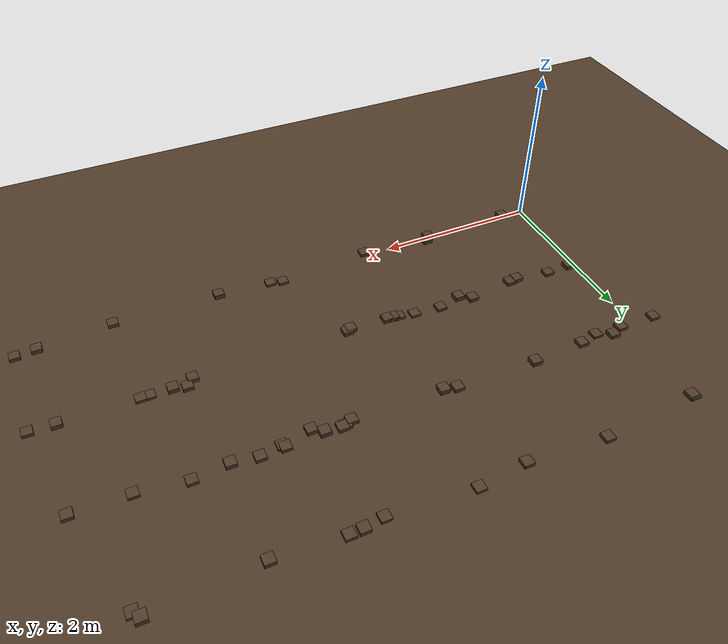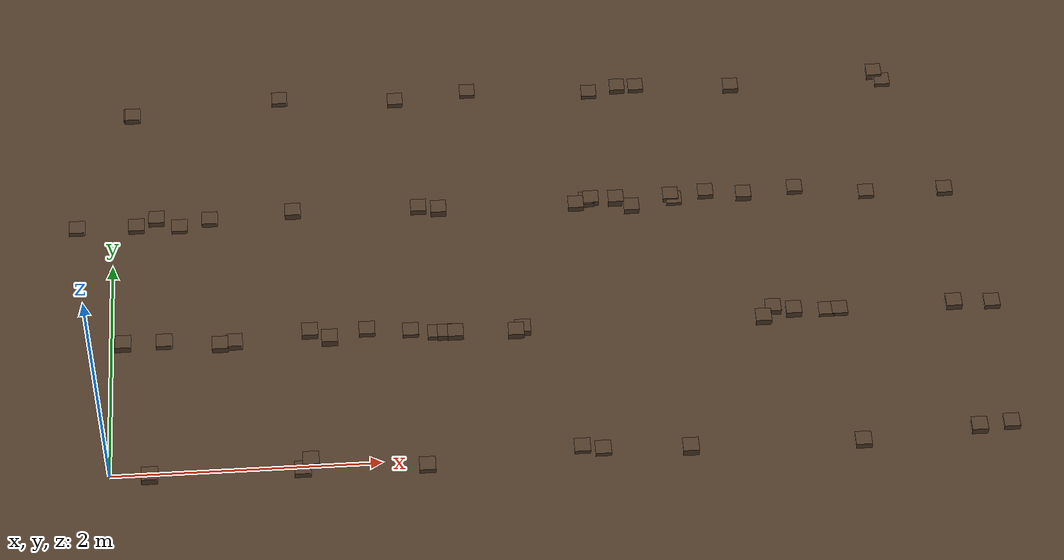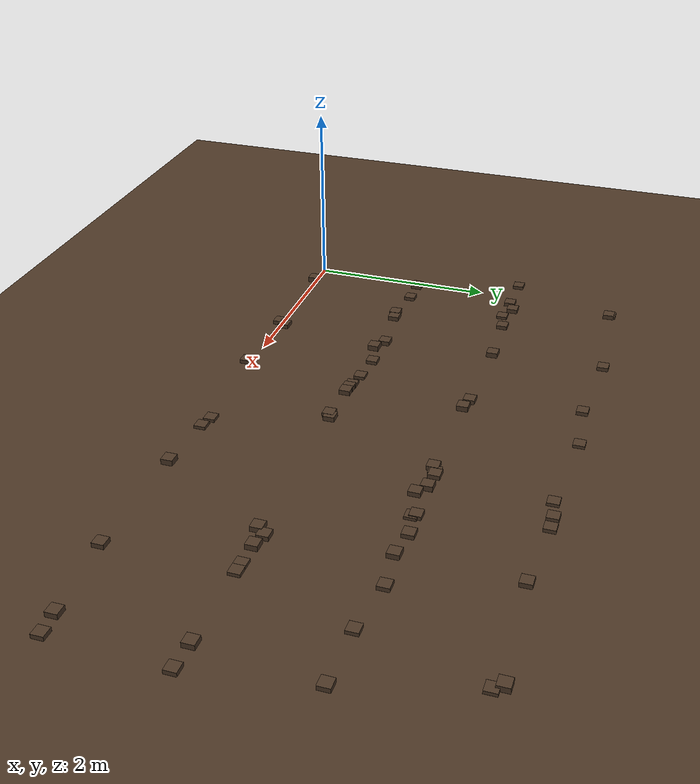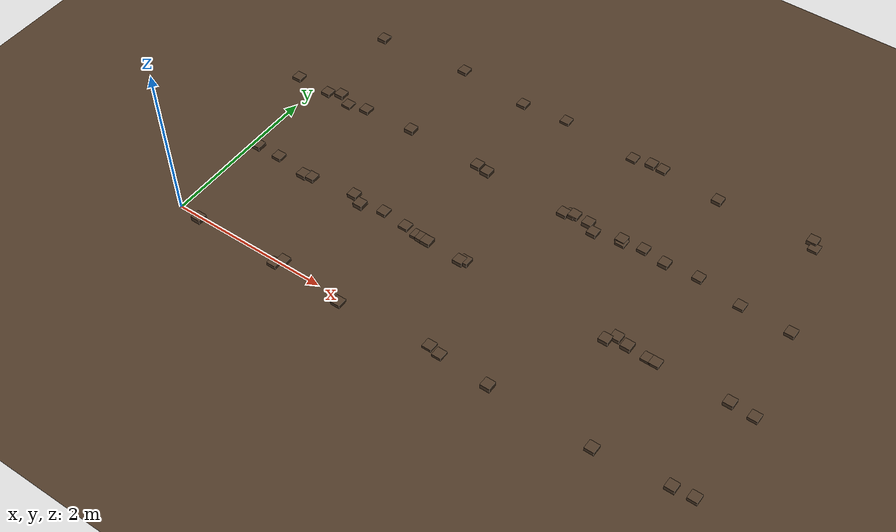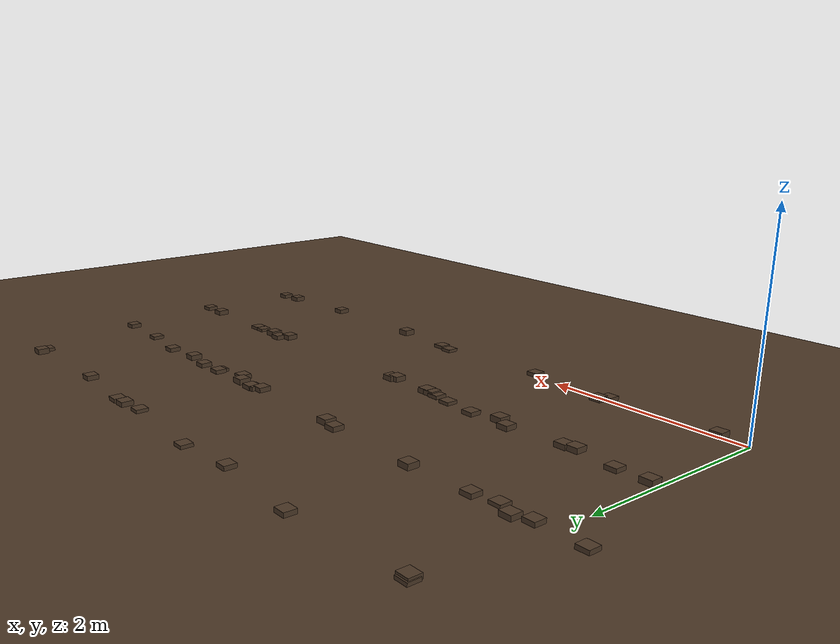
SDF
<sdf version="1.9">
 <world name="field_main">
  <model name="furrow_floor">
   <static>true</static>
   <link name="link">
    <pose>0 0 0 0.05236 0 0</pose>
    <collision name="c">
     <geometry><plane><normal>0 0 1</normal><size>200 200</size></plane></geometry>
     <surface><friction><ode><mu>0.4</mu><mu2>0.4</mu2></ode></friction></surface>
    </collision>
    <visual name="v">
     <geometry><plane><normal>0 0 1</normal><size>200 200</size></plane></geometry>
     <material><ambient>0.20 0.15 0.10 1</ambient><diffuse>0.30 0.22 0.15 1</diffuse></material>
    </visual>
   </link>
  </model>
  <model name="clod_0_0">
   <static>true</static>
   <link name="l">
    <collision name="c">
     <geometry><box><size>0.12 0.12 0.059</size></box></geometry>
     <surface><friction><ode><mu>0.4</mu><mu2>0.4</mu2></ode></friction></surface>
    </collision>
    <visual name="v">
     <geometry><box><size>0.12 0.12 0.059</size></box></geometry>
     <material><ambient>0.22 0.16 0.11 1</ambient><diffuse>0.30 0.22 0.15 1</diffuse></material>
    </visual>
    <pose>0.290 -0.027 0.029 0 0 0</pose>
   </link>
  </model>
  <model name="clod_0_1">
   <static>true</static>
   <link name="l">
    <collision name="c">
     <geometry><box><size>0.12 0.12 0.045</size></box></geometry>
     <surface><friction><ode><mu>0.4</mu><mu2>0.4</mu2></ode></friction></surface>
    </collision>
    <visual name="v">
     <geometry><box><size>0.12 0.12 0.045</size></box></geometry>
     <material><ambient>0.22 0.16 0.11 1</ambient><diffuse>0.30 0.22 0.15 1</diffuse></material>
    </visual>
    <pose>6.665 0.052 0.022 0 0 0</pose>
   </link>
  </model>
  <model name="clod_0_2">
   <static>true</static>
   <link name="l">
    <collision name="c">
     <geometry><box><size>0.12 0.12 0.047</size></box></geometry>
     <surface><friction><ode><mu>0.4</mu><mu2>0.4</mu2></ode></friction></surface>
    </collision>
    <visual name="v">
     <geometry><box><size>0.12 0.12 0.047</size></box></geometry>
     <material><ambient>0.22 0.16 0.11 1</ambient><diffuse>0.30 0.22 0.15 1</diffuse></material>
    </visual>
    <pose>1.472 0.044 0.024 0 0 0</pose>
   </link>
  </model>
  <model name="clod_0_3">
   <static>true</static>
   <link name="l">
    <collision name="c">
     <geometry><box><size>0.12 0.12 0.034</size></box></geometry>
     <surface><friction><ode><mu>0.4</mu><mu2>0.4</mu2></ode></friction></surface>
    </collision>
    <visual name="v">
     <geometry><box><size>0.12 0.12 0.034</size></box></geometry>
     <material><ambient>0.22 0.16 0.11 1</ambient><diffuse>0.30 0.22 0.15 1</diffuse></material>
    </visual>
    <pose>3.624 0.011 0.017 0 0 0</pose>
   </link>
  </model>
  <model name="clod_0_4">
   <static>true</static>
   <link name="l">
    <collision name="c">
     <geometry><box><size>0.12 0.12 0.048</size></box></geometry>
     <surface><friction><ode><mu>0.4</mu><mu2>0.4</mu2></ode></friction></surface>
    </collision>
    <visual name="v">
     <geometry><box><size>0.12 0.12 0.048</size></box></geometry>
     <material><ambient>0.22 0.16 0.11 1</ambient><diffuse>0.30 0.22 0.15 1</diffuse></material>
    </visual>
    <pose>5.547 -0.045 0.024 0 0 0</pose>
   </link>
  </model>
  <model name="clod_0_5">
   <static>true</static>
   <link name="l">
    <collision name="c">
     <geometry><box><size>0.12 0.12 0.054</size></box></geometry>
     <surface><friction><ode><mu>0.4</mu><mu2>0.4</mu2></ode></friction></surface>
    </collision>
    <visual name="v">
     <geometry><box><size>0.12 0.12 0.054</size></box></geometry>
     <material><ambient>0.22 0.16 0.11 1</ambient><diffuse>0.30 0.22 0.15 1</diffuse></material>
    </visual>
    <pose>6.421 0.030 0.027 0 0 0</pose>
   </link>
  </model>
  <model name="clod_0_6">
   <static>true</static>
   <link name="l">
    <collision name="c">
     <geometry><box><size>0.12 0.12 0.060</size></box></geometry>
     <surface><friction><ode><mu>0.4</mu><mu2>0.4</mu2></ode></friction></surface>
    </collision>
    <visual name="v">
     <geometry><box><size>0.12 0.12 0.060</size></box></geometry>
     <material><ambient>0.22 0.16 0.11 1</ambient><diffuse>0.30 0.22 0.15 1</diffuse></material>
    </visual>
    <pose>4.269 -0.026 0.030 0 0 0</pose>
   </link>
  </model>
  <model name="clod_0_7">
   <static>true</static>
   <link name="l">
    <collision name="c">
     <geometry><box><size>0.12 0.12 0.045</size></box></geometry>
     <surface><friction><ode><mu>0.4</mu><mu2>0.4</mu2></ode></friction></surface>
    </collision>
    <visual name="v">
     <geometry><box><size>0.12 0.12 0.045</size></box></geometry>
     <material><ambient>0.22 0.16 0.11 1</ambient><diffuse>0.30 0.22 0.15 1</diffuse></material>
    </visual>
    <pose>1.412 -0.037 0.022 0 0 0</pose>
   </link>
  </model>
  <model name="clod_0_8">
   <static>true</static>
   <link name="l">
    <collision name="c">
     <geometry><box><size>0.12 0.12 0.041</size></box></geometry>
     <surface><friction><ode><mu>0.4</mu><mu2>0.4</mu2></ode></friction></surface>
    </collision>
    <visual name="v">
     <geometry><box><size>0.12 0.12 0.041</size></box></geometry>
     <material><ambient>0.22 0.16 0.11 1</ambient><diffuse>0.30 0.22 0.15 1</diffuse></material>
    </visual>
    <pose>2.326 -0.057 0.020 0 0 0</pose>
   </link>
  </model>
  <model name="clod_0_9">
   <static>true</static>
   <link name="l">
    <collision name="c">
     <geometry><box><size>0.12 0.12 0.032</size></box></geometry>
     <surface><friction><ode><mu>0.4</mu><mu2>0.4</mu2></ode></friction></surface>
    </collision>
    <visual name="v">
     <geometry><box><size>0.12 0.12 0.032</size></box></geometry>
     <material><ambient>0.22 0.16 0.11 1</ambient><diffuse>0.30 0.22 0.15 1</diffuse></material>
    </visual>
    <pose>3.473 0.043 0.016 0 0 0</pose>
   </link>
  </model>
  <model name="clod_0_10">
   <static>true</static>
   <link name="l">
    <collision name="c">
     <geometry><box><size>0.12 0.12 0.051</size></box></geometry>
     <surface><friction><ode><mu>0.4</mu><mu2>0.4</mu2></ode></friction></surface>
    </collision>
    <visual name="v">
     <geometry><box><size>0.12 0.12 0.051</size></box></geometry>
     <material><ambient>0.22 0.16 0.11 1</ambient><diffuse>0.30 0.22 0.15 1</diffuse></material>
    </visual>
    <pose>2.595 1.173 0.026 0 0 0</pose>
   </link>
  </model>
  <model name="clod_0_11">
   <static>true</static>
   <link name="l">
    <collision name="c">
     <geometry><box><size>0.12 0.12 0.052</size></box></geometry>
     <surface><friction><ode><mu>0.4</mu><mu2>0.4</mu2></ode></friction></surface>
    </collision>
    <visual name="v">
     <geometry><box><size>0.12 0.12 0.052</size></box></geometry>
     <material><ambient>0.22 0.16 0.11 1</ambient><diffuse>0.30 0.22 0.15 1</diffuse></material>
    </visual>
    <pose>0.817 1.170 0.026 0 0 0</pose>
   </link>
  </model>
  <model name="clod_0_12">
   <static>true</static>
   <link name="l">
    <collision name="c">
     <geometry><box><size>0.12 0.12 0.040</size></box></geometry>
     <surface><friction><ode><mu>0.4</mu><mu2>0.4</mu2></ode></friction></surface>
    </collision>
    <visual name="v">
     <geometry><box><size>0.12 0.12 0.040</size></box></geometry>
     <material><ambient>0.22 0.16 0.11 1</ambient><diffuse>0.30 0.22 0.15 1</diffuse></material>
    </visual>
    <pose>1.927 1.249 0.020 0 0 0</pose>
   </link>
  </model>
  <model name="clod_0_13">
   <static>true</static>
   <link name="l">
    <collision name="c">
     <geometry><box><size>0.12 0.12 0.059</size></box></geometry>
     <surface><friction><ode><mu>0.4</mu><mu2>0.4</mu2></ode></friction></surface>
    </collision>
    <visual name="v">
     <geometry><box><size>0.12 0.12 0.059</size></box></geometry>
     <material><ambient>0.22 0.16 0.11 1</ambient><diffuse>0.30 0.22 0.15 1</diffuse></material>
    </visual>
    <pose>1.643 1.177 0.030 0 0 0</pose>
   </link>
  </model>
  <model name="clod_0_14">
   <static>true</static>
   <link name="l">
    <collision name="c">
     <geometry><box><size>0.12 0.12 0.054</size></box></geometry>
     <surface><friction><ode><mu>0.4</mu><mu2>0.4</mu2></ode></friction></surface>
    </collision>
    <visual name="v">
     <geometry><box><size>0.12 0.12 0.054</size></box></geometry>
     <material><ambient>0.22 0.16 0.11 1</ambient><diffuse>0.30 0.22 0.15 1</diffuse></material>
    </visual>
    <pose>4.937 1.166 0.027 0 0 0</pose>
   </link>
  </model>
  <model name="clod_0_15">
   <static>true</static>
   <link name="l">
    <collision name="c">
     <geometry><box><size>0.12 0.12 0.053</size></box></geometry>
     <surface><friction><ode><mu>0.4</mu><mu2>0.4</mu2></ode></friction></surface>
    </collision>
    <visual name="v">
     <geometry><box><size>0.12 0.12 0.053</size></box></geometry>
     <material><ambient>0.22 0.16 0.11 1</ambient><diffuse>0.30 0.22 0.15 1</diffuse></material>
    </visual>
    <pose>3.054 1.155 0.027 0 0 0</pose>
   </link>
  </model>
  <model name="clod_0_16">
   <static>true</static>
   <link name="l">
    <collision name="c">
     <geometry><box><size>0.12 0.12 0.035</size></box></geometry>
     <surface><friction><ode><mu>0.4</mu><mu2>0.4</mu2></ode></friction></surface>
    </collision>
    <visual name="v">
     <geometry><box><size>0.12 0.12 0.035</size></box></geometry>
     <material><ambient>0.22 0.16 0.11 1</ambient><diffuse>0.30 0.22 0.15 1</diffuse></material>
    </visual>
    <pose>2.445 1.186 0.018 0 0 0</pose>
   </link>
  </model>
  <model name="clod_0_17">
   <static>true</static>
   <link name="l">
    <collision name="c">
     <geometry><box><size>0.12 0.12 0.042</size></box></geometry>
     <surface><friction><ode><mu>0.4</mu><mu2>0.4</mu2></ode></friction></surface>
    </collision>
    <visual name="v">
     <geometry><box><size>0.12 0.12 0.042</size></box></geometry>
     <material><ambient>0.22 0.16 0.11 1</ambient><diffuse>0.30 0.22 0.15 1</diffuse></material>
    </visual>
    <pose>6.690 1.206 0.021 0 0 0</pose>
   </link>
  </model>
  <model name="clod_0_18">
   <static>true</static>
   <link name="l">
    <collision name="c">
     <geometry><box><size>0.12 0.12 0.048</size></box></geometry>
     <surface><friction><ode><mu>0.4</mu><mu2>0.4</mu2></ode></friction></surface>
    </collision>
    <visual name="v">
     <geometry><box><size>0.12 0.12 0.048</size></box></geometry>
     <material><ambient>0.22 0.16 0.11 1</ambient><diffuse>0.30 0.22 0.15 1</diffuse></material>
    </visual>
    <pose>5.020 1.260 0.024 0 0 0</pose>
   </link>
  </model>
  <model name="clod_0_19">
   <static>true</static>
   <link name="l">
    <collision name="c">
     <geometry><box><size>0.12 0.12 0.054</size></box></geometry>
     <surface><friction><ode><mu>0.4</mu><mu2>0.4</mu2></ode></friction></surface>
    </collision>
    <visual name="v">
     <geometry><box><size>0.12 0.12 0.054</size></box></geometry>
     <material><ambient>0.22 0.16 0.11 1</ambient><diffuse>0.30 0.22 0.15 1</diffuse></material>
    </visual>
    <pose>6.399 1.217 0.027 0 0 0</pose>
   </link>
  </model>
  <model name="clod_1_0">
   <static>true</static>
   <link name="l">
    <collision name="c">
     <geometry><box><size>0.12 0.12 0.041</size></box></geometry>
     <surface><friction><ode><mu>0.4</mu><mu2>0.4</mu2></ode></friction></surface>
    </collision>
    <visual name="v">
     <geometry><box><size>0.12 0.12 0.041</size></box></geometry>
     <material><ambient>0.22 0.16 0.11 1</ambient><diffuse>0.30 0.22 0.15 1</diffuse></material>
    </visual>
    <pose>0.395 1.228 0.021 0 0 0</pose>
   </link>
  </model>
  <model name="clod_1_1">
   <static>true</static>
   <link name="l">
    <collision name="c">
     <geometry><box><size>0.12 0.12 0.031</size></box></geometry>
     <surface><friction><ode><mu>0.4</mu><mu2>0.4</mu2></ode></friction></surface>
    </collision>
    <visual name="v">
     <geometry><box><size>0.12 0.12 0.031</size></box></geometry>
     <material><ambient>0.22 0.16 0.11 1</ambient><diffuse>0.30 0.22 0.15 1</diffuse></material>
    </visual>
    <pose>5.423 1.215 0.016 0 0 0</pose>
   </link>
  </model>
  <model name="clod_1_2">
   <static>true</static>
   <link name="l">
    <collision name="c">
     <geometry><box><size>0.12 0.12 0.050</size></box></geometry>
     <surface><friction><ode><mu>0.4</mu><mu2>0.4</mu2></ode></friction></surface>
    </collision>
    <visual name="v">
     <geometry><box><size>0.12 0.12 0.050</size></box></geometry>
     <material><ambient>0.22 0.16 0.11 1</ambient><diffuse>0.30 0.22 0.15 1</diffuse></material>
    </visual>
    <pose>1.495 1.257 0.025 0 0 0</pose>
   </link>
  </model>
  <model name="clod_1_3">
   <static>true</static>
   <link name="l">
    <collision name="c">
     <geometry><box><size>0.12 0.12 0.034</size></box></geometry>
     <surface><friction><ode><mu>0.4</mu><mu2>0.4</mu2></ode></friction></surface>
    </collision>
    <visual name="v">
     <geometry><box><size>0.12 0.12 0.034</size></box></geometry>
     <material><ambient>0.22 0.16 0.11 1</ambient><diffuse>0.30 0.22 0.15 1</diffuse></material>
    </visual>
    <pose>5.524 1.215 0.017 0 0 0</pose>
   </link>
  </model>
  <model name="clod_1_4">
   <static>true</static>
   <link name="l">
    <collision name="c">
     <geometry><box><size>0.12 0.12 0.056</size></box></geometry>
     <surface><friction><ode><mu>0.4</mu><mu2>0.4</mu2></ode></friction></surface>
    </collision>
    <visual name="v">
     <geometry><box><size>0.12 0.12 0.056</size></box></geometry>
     <material><ambient>0.22 0.16 0.11 1</ambient><diffuse>0.30 0.22 0.15 1</diffuse></material>
    </visual>
    <pose>5.173 1.223 0.028 0 0 0</pose>
   </link>
  </model>
  <model name="clod_1_5">
   <static>true</static>
   <link name="l">
    <collision name="c">
     <geometry><box><size>0.12 0.12 0.049</size></box></geometry>
     <surface><friction><ode><mu>0.4</mu><mu2>0.4</mu2></ode></friction></surface>
    </collision>
    <visual name="v">
     <geometry><box><size>0.12 0.12 0.049</size></box></geometry>
     <material><ambient>0.22 0.16 0.11 1</ambient><diffuse>0.30 0.22 0.15 1</diffuse></material>
    </visual>
    <pose>2.518 1.177 0.025 0 0 0</pose>
   </link>
  </model>
  <model name="clod_1_6">
   <static>true</static>
   <link name="l">
    <collision name="c">
     <geometry><box><size>0.12 0.12 0.049</size></box></geometry>
     <surface><friction><ode><mu>0.4</mu><mu2>0.4</mu2></ode></friction></surface>
    </collision>
    <visual name="v">
     <geometry><box><size>0.12 0.12 0.049</size></box></geometry>
     <material><ambient>0.22 0.16 0.11 1</ambient><diffuse>0.30 0.22 0.15 1</diffuse></material>
    </visual>
    <pose>0.924 1.188 0.025 0 0 0</pose>
   </link>
  </model>
  <model name="clod_1_7">
   <static>true</static>
   <link name="l">
    <collision name="c">
     <geometry><box><size>0.12 0.12 0.033</size></box></geometry>
     <surface><friction><ode><mu>0.4</mu><mu2>0.4</mu2></ode></friction></surface>
    </collision>
    <visual name="v">
     <geometry><box><size>0.12 0.12 0.033</size></box></geometry>
     <material><ambient>0.22 0.16 0.11 1</ambient><diffuse>0.30 0.22 0.15 1</diffuse></material>
    </visual>
    <pose>2.257 1.220 0.017 0 0 0</pose>
   </link>
  </model>
  <model name="clod_1_8">
   <static>true</static>
   <link name="l">
    <collision name="c">
     <geometry><box><size>0.12 0.12 0.055</size></box></geometry>
     <surface><friction><ode><mu>0.4</mu><mu2>0.4</mu2></ode></friction></surface>
    </collision>
    <visual name="v">
     <geometry><box><size>0.12 0.12 0.055</size></box></geometry>
     <material><ambient>0.22 0.16 0.11 1</ambient><diffuse>0.30 0.22 0.15 1</diffuse></material>
    </visual>
    <pose>0.084 1.222 0.027 0 0 0</pose>
   </link>
  </model>
  <model name="clod_1_9">
   <static>true</static>
   <link name="l">
    <collision name="c">
     <geometry><box><size>0.12 0.12 0.052</size></box></geometry>
     <surface><friction><ode><mu>0.4</mu><mu2>0.4</mu2></ode></friction></surface>
    </collision>
    <visual name="v">
     <geometry><box><size>0.12 0.12 0.052</size></box></geometry>
     <material><ambient>0.22 0.16 0.11 1</ambient><diffuse>0.30 0.22 0.15 1</diffuse></material>
    </visual>
    <pose>3.106 1.182 0.026 0 0 0</pose>
   </link>
  </model>
  <model name="clod_1_10">
   <static>true</static>
   <link name="l">
    <collision name="c">
     <geometry><box><size>0.12 0.12 0.057</size></box></geometry>
     <surface><friction><ode><mu>0.4</mu><mu2>0.4</mu2></ode></friction></surface>
    </collision>
    <visual name="v">
     <geometry><box><size>0.12 0.12 0.057</size></box></geometry>
     <material><ambient>0.22 0.16 0.11 1</ambient><diffuse>0.30 0.22 0.15 1</diffuse></material>
    </visual>
    <pose>3.913 2.427 0.028 0 0 0</pose>
   </link>
  </model>
  <model name="clod_1_11">
   <static>true</static>
   <link name="l">
    <collision name="c">
     <geometry><box><size>0.12 0.12 0.043</size></box></geometry>
     <surface><friction><ode><mu>0.4</mu><mu2>0.4</mu2></ode></friction></surface>
    </collision>
    <visual name="v">
     <geometry><box><size>0.12 0.12 0.043</size></box></geometry>
     <material><ambient>0.22 0.16 0.11 1</ambient><diffuse>0.30 0.22 0.15 1</diffuse></material>
    </visual>
    <pose>0.746 2.423 0.021 0 0 0</pose>
   </link>
  </model>
  <model name="clod_1_12">
   <static>true</static>
   <link name="l">
    <collision name="c">
     <geometry><box><size>0.12 0.12 0.049</size></box></geometry>
     <surface><friction><ode><mu>0.4</mu><mu2>0.4</mu2></ode></friction></surface>
    </collision>
    <visual name="v">
     <geometry><box><size>0.12 0.12 0.049</size></box></geometry>
     <material><ambient>0.22 0.16 0.11 1</ambient><diffuse>0.30 0.22 0.15 1</diffuse></material>
    </visual>
    <pose>4.029 2.343 0.024 0 0 0</pose>
   </link>
  </model>
  <model name="clod_1_13">
   <static>true</static>
   <link name="l">
    <collision name="c">
     <geometry><box><size>0.12 0.12 0.047</size></box></geometry>
     <surface><friction><ode><mu>0.4</mu><mu2>0.4</mu2></ode></friction></surface>
    </collision>
    <visual name="v">
     <geometry><box><size>0.12 0.12 0.047</size></box></geometry>
     <material><ambient>0.22 0.16 0.11 1</ambient><diffuse>0.30 0.22 0.15 1</diffuse></material>
    </visual>
    <pose>3.598 2.395 0.024 0 0 0</pose>
   </link>
  </model>
  <model name="clod_1_14">
   <static>true</static>
   <link name="l">
    <collision name="c">
     <geometry><box><size>0.12 0.12 0.048</size></box></geometry>
     <surface><friction><ode><mu>0.4</mu><mu2>0.4</mu2></ode></friction></surface>
    </collision>
    <visual name="v">
     <geometry><box><size>0.12 0.12 0.048</size></box></geometry>
     <material><ambient>0.22 0.16 0.11 1</ambient><diffuse>0.30 0.22 0.15 1</diffuse></material>
    </visual>
    <pose>0.334 2.454 0.024 0 0 0</pose>
   </link>
  </model>
  <model name="clod_1_15">
   <static>true</static>
   <link name="l">
    <collision name="c">
     <geometry><box><size>0.12 0.12 0.047</size></box></geometry>
     <surface><friction><ode><mu>0.4</mu><mu2>0.4</mu2></ode></friction></surface>
    </collision>
    <visual name="v">
     <geometry><box><size>0.12 0.12 0.047</size></box></geometry>
     <material><ambient>0.22 0.16 0.11 1</ambient><diffuse>0.30 0.22 0.15 1</diffuse></material>
    </visual>
    <pose>2.370 2.443 0.023 0 0 0</pose>
   </link>
  </model>
  <model name="clod_1_16">
   <static>true</static>
   <link name="l">
    <collision name="c">
     <geometry><box><size>0.12 0.12 0.031</size></box></geometry>
     <surface><friction><ode><mu>0.4</mu><mu2>0.4</mu2></ode></friction></surface>
    </collision>
    <visual name="v">
     <geometry><box><size>0.12 0.12 0.031</size></box></geometry>
     <material><ambient>0.22 0.16 0.11 1</ambient><diffuse>0.30 0.22 0.15 1</diffuse></material>
    </visual>
    <pose>0.512 2.370 0.016 0 0 0</pose>
   </link>
  </model>
  <model name="clod_1_17">
   <static>true</static>
   <link name="l">
    <collision name="c">
     <geometry><box><size>0.12 0.12 0.053</size></box></geometry>
     <surface><friction><ode><mu>0.4</mu><mu2>0.4</mu2></ode></friction></surface>
    </collision>
    <visual name="v">
     <geometry><box><size>0.12 0.12 0.053</size></box></geometry>
     <material><ambient>0.22 0.16 0.11 1</ambient><diffuse>0.30 0.22 0.15 1</diffuse></material>
    </visual>
    <pose>4.913 2.414 0.026 0 0 0</pose>
   </link>
  </model>
  <model name="clod_1_18">
   <static>true</static>
   <link name="l">
    <collision name="c">
     <geometry><box><size>0.12 0.12 0.042</size></box></geometry>
     <surface><friction><ode><mu>0.4</mu><mu2>0.4</mu2></ode></friction></surface>
    </collision>
    <visual name="v">
     <geometry><box><size>0.12 0.12 0.042</size></box></geometry>
     <material><ambient>0.22 0.16 0.11 1</ambient><diffuse>0.30 0.22 0.15 1</diffuse></material>
    </visual>
    <pose>5.319 2.455 0.021 0 0 0</pose>
   </link>
  </model>
  <model name="clod_1_19">
   <static>true</static>
   <link name="l">
    <collision name="c">
     <geometry><box><size>0.12 0.12 0.042</size></box></geometry>
     <surface><friction><ode><mu>0.4</mu><mu2>0.4</mu2></ode></friction></surface>
    </collision>
    <visual name="v">
     <geometry><box><size>0.12 0.12 0.042</size></box></geometry>
     <material><ambient>0.22 0.16 0.11 1</ambient><diffuse>0.30 0.22 0.15 1</diffuse></material>
    </visual>
    <pose>0.179 2.390 0.021 0 0 0</pose>
   </link>
  </model>
  <model name="clod_2_0">
   <static>true</static>
   <link name="l">
    <collision name="c">
     <geometry><box><size>0.12 0.12 0.030</size></box></geometry>
     <surface><friction><ode><mu>0.4</mu><mu2>0.4</mu2></ode></friction></surface>
    </collision>
    <visual name="v">
     <geometry><box><size>0.12 0.12 0.030</size></box></geometry>
     <material><ambient>0.22 0.16 0.11 1</ambient><diffuse>0.30 0.22 0.15 1</diffuse></material>
    </visual>
    <pose>4.367 2.405 0.015 0 0 0</pose>
   </link>
  </model>
  <model name="clod_2_1">
   <static>true</static>
   <link name="l">
    <collision name="c">
     <geometry><box><size>0.12 0.12 0.045</size></box></geometry>
     <surface><friction><ode><mu>0.4</mu><mu2>0.4</mu2></ode></friction></surface>
    </collision>
    <visual name="v">
     <geometry><box><size>0.12 0.12 0.045</size></box></geometry>
     <material><ambient>0.22 0.16 0.11 1</ambient><diffuse>0.30 0.22 0.15 1</diffuse></material>
    </visual>
    <pose>6.491 2.364 0.022 0 0 0</pose>
   </link>
  </model>
  <model name="clod_2_2">
   <static>true</static>
   <link name="l">
    <collision name="c">
     <geometry><box><size>0.12 0.12 0.040</size></box></geometry>
     <surface><friction><ode><mu>0.4</mu><mu2>0.4</mu2></ode></friction></surface>
    </collision>
    <visual name="v">
     <geometry><box><size>0.12 0.12 0.040</size></box></geometry>
     <material><ambient>0.22 0.16 0.11 1</ambient><diffuse>0.30 0.22 0.15 1</diffuse></material>
    </visual>
    <pose>4.343 2.443 0.020 0 0 0</pose>
   </link>
  </model>
  <model name="clod_2_3">
   <static>true</static>
   <link name="l">
    <collision name="c">
     <geometry><box><size>0.12 0.12 0.036</size></box></geometry>
     <surface><friction><ode><mu>0.4</mu><mu2>0.4</mu2></ode></friction></surface>
    </collision>
    <visual name="v">
     <geometry><box><size>0.12 0.12 0.036</size></box></geometry>
     <material><ambient>0.22 0.16 0.11 1</ambient><diffuse>0.30 0.22 0.15 1</diffuse></material>
    </visual>
    <pose>5.875 2.375 0.018 0 0 0</pose>
   </link>
  </model>
  <model name="clod_2_4">
   <static>true</static>
   <link name="l">
    <collision name="c">
     <geometry><box><size>0.12 0.12 0.044</size></box></geometry>
     <surface><friction><ode><mu>0.4</mu><mu2>0.4</mu2></ode></friction></surface>
    </collision>
    <visual name="v">
     <geometry><box><size>0.12 0.12 0.044</size></box></geometry>
     <material><ambient>0.22 0.16 0.11 1</ambient><diffuse>0.30 0.22 0.15 1</diffuse></material>
    </visual>
    <pose>3.682 2.431 0.022 0 0 0</pose>
   </link>
  </model>
  <model name="clod_2_5">
   <static>true</static>
   <link name="l">
    <collision name="c">
     <geometry><box><size>0.12 0.12 0.056</size></box></geometry>
     <surface><friction><ode><mu>0.4</mu><mu2>0.4</mu2></ode></friction></surface>
    </collision>
    <visual name="v">
     <geometry><box><size>0.12 0.12 0.056</size></box></geometry>
     <material><ambient>0.22 0.16 0.11 1</ambient><diffuse>0.30 0.22 0.15 1</diffuse></material>
    </visual>
    <pose>1.392 2.458 0.028 0 0 0</pose>
   </link>
  </model>
  <model name="clod_2_6">
   <static>true</static>
   <link name="l">
    <collision name="c">
     <geometry><box><size>0.12 0.12 0.045</size></box></geometry>
     <surface><friction><ode><mu>0.4</mu><mu2>0.4</mu2></ode></friction></surface>
    </collision>
    <visual name="v">
     <geometry><box><size>0.12 0.12 0.045</size></box></geometry>
     <material><ambient>0.22 0.16 0.11 1</ambient><diffuse>0.30 0.22 0.15 1</diffuse></material>
    </visual>
    <pose>3.719 2.443 0.022 0 0 0</pose>
   </link>
  </model>
  <model name="clod_2_7">
   <static>true</static>
   <link name="l">
    <collision name="c">
     <geometry><box><size>0.12 0.12 0.057</size></box></geometry>
     <surface><friction><ode><mu>0.4</mu><mu2>0.4</mu2></ode></friction></surface>
    </collision>
    <visual name="v">
     <geometry><box><size>0.12 0.12 0.057</size></box></geometry>
     <material><ambient>0.22 0.16 0.11 1</ambient><diffuse>0.30 0.22 0.15 1</diffuse></material>
    </visual>
    <pose>2.526 2.412 0.029 0 0 0</pose>
   </link>
  </model>
  <model name="clod_2_8">
   <static>true</static>
   <link name="l">
    <collision name="c">
     <geometry><box><size>0.12 0.12 0.039</size></box></geometry>
     <surface><friction><ode><mu>0.4</mu><mu2>0.4</mu2></ode></friction></surface>
    </collision>
    <visual name="v">
     <geometry><box><size>0.12 0.12 0.039</size></box></geometry>
     <material><ambient>0.22 0.16 0.11 1</ambient><diffuse>0.30 0.22 0.15 1</diffuse></material>
    </visual>
    <pose>-0.281 2.398 0.019 0 0 0</pose>
   </link>
  </model>
  <model name="clod_2_9">
   <static>true</static>
   <link name="l">
    <collision name="c">
     <geometry><box><size>0.12 0.12 0.044</size></box></geometry>
     <surface><friction><ode><mu>0.4</mu><mu2>0.4</mu2></ode></friction></surface>
    </collision>
    <visual name="v">
     <geometry><box><size>0.12 0.12 0.044</size></box></geometry>
     <material><ambient>0.22 0.16 0.11 1</ambient><diffuse>0.30 0.22 0.15 1</diffuse></material>
    </visual>
    <pose>4.619 2.456 0.022 0 0 0</pose>
   </link>
  </model>
  <model name="clod_2_10">
   <static>true</static>
   <link name="l">
    <collision name="c">
     <geometry><box><size>0.12 0.12 0.033</size></box></geometry>
     <surface><friction><ode><mu>0.4</mu><mu2>0.4</mu2></ode></friction></surface>
    </collision>
    <visual name="v">
     <geometry><box><size>0.12 0.12 0.033</size></box></geometry>
     <material><ambient>0.22 0.16 0.11 1</ambient><diffuse>0.30 0.22 0.15 1</diffuse></material>
    </visual>
    <pose>2.815 3.648 0.016 0 0 0</pose>
   </link>
  </model>
  <model name="clod_2_11">
   <static>true</static>
   <link name="l">
    <collision name="c">
     <geometry><box><size>0.12 0.12 0.033</size></box></geometry>
     <surface><friction><ode><mu>0.4</mu><mu2>0.4</mu2></ode></friction></surface>
    </collision>
    <visual name="v">
     <geometry><box><size>0.12 0.12 0.033</size></box></geometry>
     <material><ambient>0.22 0.16 0.11 1</ambient><diffuse>0.30 0.22 0.15 1</diffuse></material>
    </visual>
    <pose>6.154 3.551 0.017 0 0 0</pose>
   </link>
  </model>
  <model name="clod_2_12">
   <static>true</static>
   <link name="l">
    <collision name="c">
     <geometry><box><size>0.12 0.12 0.038</size></box></geometry>
     <surface><friction><ode><mu>0.4</mu><mu2>0.4</mu2></ode></friction></surface>
    </collision>
    <visual name="v">
     <geometry><box><size>0.12 0.12 0.038</size></box></geometry>
     <material><ambient>0.22 0.16 0.11 1</ambient><diffuse>0.30 0.22 0.15 1</diffuse></material>
    </visual>
    <pose>4.168 3.617 0.019 0 0 0</pose>
   </link>
  </model>
  <model name="clod_2_13">
   <static>true</static>
   <link name="l">
    <collision name="c">
     <geometry><box><size>0.12 0.12 0.048</size></box></geometry>
     <surface><friction><ode><mu>0.4</mu><mu2>0.4</mu2></ode></friction></surface>
    </collision>
    <visual name="v">
     <geometry><box><size>0.12 0.12 0.048</size></box></geometry>
     <material><ambient>0.22 0.16 0.11 1</ambient><diffuse>0.30 0.22 0.15 1</diffuse></material>
    </visual>
    <pose>4.019 3.614 0.024 0 0 0</pose>
   </link>
  </model>
  <model name="clod_2_14">
   <static>true</static>
   <link name="l">
    <collision name="c">
     <geometry><box><size>0.12 0.12 0.049</size></box></geometry>
     <surface><friction><ode><mu>0.4</mu><mu2>0.4</mu2></ode></friction></surface>
    </collision>
    <visual name="v">
     <geometry><box><size>0.12 0.12 0.049</size></box></geometry>
     <material><ambient>0.22 0.16 0.11 1</ambient><diffuse>0.30 0.22 0.15 1</diffuse></material>
    </visual>
    <pose>0.141 3.546 0.024 0 0 0</pose>
   </link>
  </model>
  <model name="clod_2_15">
   <static>true</static>
   <link name="l">
    <collision name="c">
     <geometry><box><size>0.12 0.12 0.033</size></box></geometry>
     <surface><friction><ode><mu>0.4</mu><mu2>0.4</mu2></ode></friction></surface>
    </collision>
    <visual name="v">
     <geometry><box><size>0.12 0.12 0.033</size></box></geometry>
     <material><ambient>0.22 0.16 0.11 1</ambient><diffuse>0.30 0.22 0.15 1</diffuse></material>
    </visual>
    <pose>3.789 3.576 0.016 0 0 0</pose>
   </link>
  </model>
  <model name="clod_2_16">
   <static>true</static>
   <link name="l">
    <collision name="c">
     <geometry><box><size>0.12 0.12 0.042</size></box></geometry>
     <surface><friction><ode><mu>0.4</mu><mu2>0.4</mu2></ode></friction></surface>
    </collision>
    <visual name="v">
     <geometry><box><size>0.12 0.12 0.042</size></box></geometry>
     <material><ambient>0.22 0.16 0.11 1</ambient><diffuse>0.30 0.22 0.15 1</diffuse></material>
    </visual>
    <pose>1.311 3.653 0.021 0 0 0</pose>
   </link>
  </model>
  <model name="clod_2_17">
   <static>true</static>
   <link name="l">
    <collision name="c">
     <geometry><box><size>0.12 0.12 0.048</size></box></geometry>
     <surface><friction><ode><mu>0.4</mu><mu2>0.4</mu2></ode></friction></surface>
    </collision>
    <visual name="v">
     <geometry><box><size>0.12 0.12 0.048</size></box></geometry>
     <material><ambient>0.22 0.16 0.11 1</ambient><diffuse>0.30 0.22 0.15 1</diffuse></material>
    </visual>
    <pose>4.929 3.563 0.024 0 0 0</pose>
   </link>
  </model>
  <model name="clod_2_18">
   <static>true</static>
   <link name="l">
    <collision name="c">
     <geometry><box><size>0.12 0.12 0.041</size></box></geometry>
     <surface><friction><ode><mu>0.4</mu><mu2>0.4</mu2></ode></friction></surface>
    </collision>
    <visual name="v">
     <geometry><box><size>0.12 0.12 0.041</size></box></geometry>
     <material><ambient>0.22 0.16 0.11 1</ambient><diffuse>0.30 0.22 0.15 1</diffuse></material>
    </visual>
    <pose>2.234 3.584 0.020 0 0 0</pose>
   </link>
  </model>
  <model name="clod_2_19">
   <static>true</static>
   <link name="l">
    <collision name="c">
     <geometry><box><size>0.12 0.12 0.057</size></box></geometry>
     <surface><friction><ode><mu>0.4</mu><mu2>0.4</mu2></ode></friction></surface>
    </collision>
    <visual name="v">
     <geometry><box><size>0.12 0.12 0.057</size></box></geometry>
     <material><ambient>0.22 0.16 0.11 1</ambient><diffuse>0.30 0.22 0.15 1</diffuse></material>
    </visual>
    <pose>6.096 3.634 0.028 0 0 0</pose>
   </link>
  </model>
  <model name="clod_3_0">
   <static>true</static>
   <link name="l">
    <collision name="c">
     <geometry><box><size>0.12 0.12 0.030</size></box></geometry>
     <surface><friction><ode><mu>0.4</mu><mu2>0.4</mu2></ode></friction></surface>
    </collision>
    <visual name="v">
     <geometry><box><size>0.12 0.12 0.030</size></box></geometry>
     <material><ambient>0.22 0.16 0.11 1</ambient><diffuse>0.30 0.22 0.15 1</diffuse></material>
    </visual>
    <pose>0.132 3.561 0.015 0 0 0</pose>
   </link>
  </model>
 </world>
</sdf>
